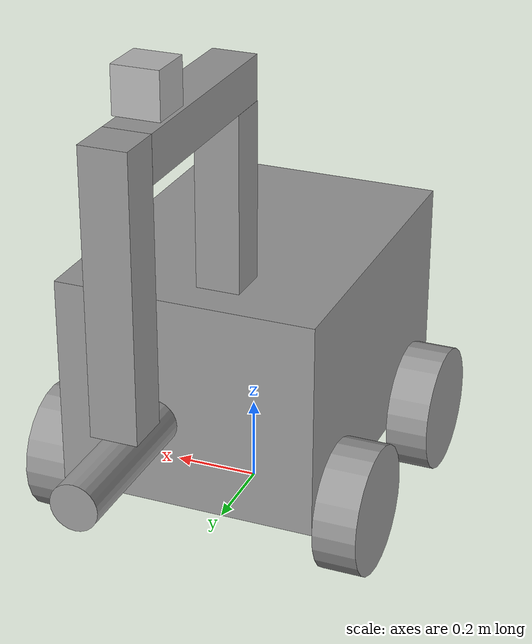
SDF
<?xml version='1.0'?>
<sdf version='1.7'>
  <model name='diff_drive_robot_complete'>
    <link name='link_0'>
      <inertial>
        <mass>2</mass>
        <inertia>
          <ixx>0.148333</ixx>
          <ixy>0</ixy>
          <ixz>0</ixz>
          <iyy>0.101667</iyy>
          <iyz>0</iyz>
          <izz>0.166667</izz>
        </inertia>
        <pose>0 0 0 0 -0 0</pose>
      </inertial>
      <pose>0 0 0.39 0 -0 0</pose>
      <gravity>1</gravity>
      <self_collide>0</self_collide>
      <kinematic>0</kinematic>
      <enable_wind>0</enable_wind>
      <visual name='visual'>
        <pose>0 0 0 0 -0 0</pose>
        <geometry>
          <box>
            <size>0.6 0.8 0.5</size>
          </box>
        </geometry>
        <material>
          <lighting>1</lighting>
          <script>
            <uri>file://media/materials/scripts/gazebo.material</uri>
            <name>Gazebo/Grey</name>
          </script>
          <shader type='pixel'>
            <normal_map>__default__</normal_map>
          </shader>
          <ambient>0.3 0.3 0.3 1</ambient>
          <diffuse>0.7 0.7 0.7 1</diffuse>
          <specular>0.01 0.01 0.01 1</specular>
          <emissive>0 0 0 1</emissive>
        </material>
        <transparency>0</transparency>
        <cast_shadows>1</cast_shadows>
      </visual>
      <collision name='collision'>
        <laser_retro>0</laser_retro>
        <max_contacts>10</max_contacts>
        <pose>0 0 0 0 -0 0</pose>
        <geometry>
          <box>
            <size>0.6 0.8 0.5</size>
          </box>
        </geometry>
        <surface>
          <friction>
            <ode>
              <mu>1</mu>
              <mu2>1</mu2>
              <fdir1>0 0 0</fdir1>
              <slip1>0</slip1>
              <slip2>0</slip2>
            </ode>
            <torsional>
              <coefficient>1</coefficient>
              <patch_radius>0</patch_radius>
              <surface_radius>0</surface_radius>
              <use_patch_radius>1</use_patch_radius>
              <ode>
                <slip>0</slip>
              </ode>
            </torsional>
          </friction>
          <bounce>
            <restitution_coefficient>0</restitution_coefficient>
            <threshold>1e+06</threshold>
          </bounce>
          <contact>
            <collide_without_contact>0</collide_without_contact>
            <collide_without_contact_bitmask>1</collide_without_contact_bitmask>
            <collide_bitmask>1</collide_bitmask>
            <ode>
              <soft_cfm>0</soft_cfm>
              <soft_erp>0.2</soft_erp>
              <kp>1e+13</kp>
              <kd>1</kd>
              <max_vel>0.01</max_vel>
              <min_depth>0</min_depth>
            </ode>
            <bullet>
              <split_impulse>1</split_impulse>
              <split_impulse_penetration_threshold>-0.01</split_impulse_penetration_threshold>
              <soft_cfm>0</soft_cfm>
              <soft_erp>0.2</soft_erp>
              <kp>1e+13</kp>
              <kd>1</kd>
            </bullet>
          </contact>
        </surface>
      </collision>
    </link>
    <link name='link_0_0'>
      <inertial>
        <mass>1</mass>
        <inertia>
          <ixx>0.166667</ixx>
          <ixy>0</ixy>
          <ixz>0</ixz>
          <iyy>0.166667</iyy>
          <iyz>0</iyz>
          <izz>0.166667</izz>
        </inertia>
        <pose>0 0 0 0 -0 0</pose>
      </inertial>
      <pose>-0.044754 0.260325 0.84 0 0 -0.000943</pose>
      <gravity>1</gravity>
      <self_collide>0</self_collide>
      <kinematic>0</kinematic>
      <enable_wind>0</enable_wind>
      <visual name='visual'>
        <pose>0 0 0 0 -0 0</pose>
        <geometry>
          <box>
            <size>0.1 0.1 0.4</size>
          </box>
        </geometry>
        <material>
          <lighting>1</lighting>
          <script>
            <uri>file://media/materials/scripts/gazebo.material</uri>
            <name>Gazebo/Grey</name>
          </script>
          <shader type='pixel'>
            <normal_map>__default__</normal_map>
          </shader>
          <ambient>0.3 0.3 0.3 1</ambient>
          <diffuse>0.7 0.7 0.7 1</diffuse>
          <specular>0.01 0.01 0.01 1</specular>
          <emissive>0 0 0 1</emissive>
        </material>
        <transparency>0</transparency>
        <cast_shadows>1</cast_shadows>
      </visual>
      <collision name='collision'>
        <laser_retro>0</laser_retro>
        <max_contacts>10</max_contacts>
        <pose>0 0 0 0 -0 0</pose>
        <geometry>
          <box>
            <size>0.1 0.1 0.4</size>
          </box>
        </geometry>
        <surface>
          <friction>
            <ode>
              <mu>1</mu>
              <mu2>1</mu2>
              <fdir1>0 0 0</fdir1>
              <slip1>0</slip1>
              <slip2>0</slip2>
            </ode>
            <torsional>
              <coefficient>1</coefficient>
              <patch_radius>0</patch_radius>
              <surface_radius>0</surface_radius>
              <use_patch_radius>1</use_patch_radius>
              <ode>
                <slip>0</slip>
              </ode>
            </torsional>
          </friction>
          <bounce>
            <restitution_coefficient>0</restitution_coefficient>
            <threshold>1e+06</threshold>
          </bounce>
          <contact>
            <collide_without_contact>0</collide_without_contact>
            <collide_without_contact_bitmask>1</collide_without_contact_bitmask>
            <collide_bitmask>1</collide_bitmask>
            <ode>
              <soft_cfm>0</soft_cfm>
              <soft_erp>0.2</soft_erp>
              <kp>1e+13</kp>
              <kd>1</kd>
              <max_vel>0.01</max_vel>
              <min_depth>0</min_depth>
            </ode>
            <bullet>
              <split_impulse>1</split_impulse>
              <split_impulse_penetration_threshold>-0.01</split_impulse_penetration_threshold>
              <soft_cfm>0</soft_cfm>
              <soft_erp>0.2</soft_erp>
              <kp>1e+13</kp>
              <kd>1</kd>
            </bullet>
          </contact>
        </surface>
      </collision>
    </link>
    <link name='link_0_0_clone'>
      <inertial>
        <mass>1</mass>
        <inertia>
          <ixx>0.166667</ixx>
          <ixy>0</ixy>
          <ixz>0</ixz>
          <iyy>0.166667</iyy>
          <iyz>0</iyz>
          <izz>0.166667</izz>
        </inertia>
        <pose>0 0 0 0 -0 0</pose>
      </inertial>
      <pose>-0.04433 0.460377 1.09002 1.5707 -0 0</pose>
      <gravity>1</gravity>
      <self_collide>0</self_collide>
      <kinematic>0</kinematic>
      <enable_wind>0</enable_wind>
      <visual name='visual_0'>
        <pose>0 0 0 0 -0 0</pose>
        <geometry>
          <box>
            <size>0.1 0.1 0.5</size>
          </box>
        </geometry>
        <material>
          <lighting>1</lighting>
          <script>
            <uri>file://media/materials/scripts/gazebo.material</uri>
            <name>Gazebo/Grey</name>
          </script>
          <shader type='pixel'>
            <normal_map>__default__</normal_map>
          </shader>
          <ambient>0.3 0.3 0.3 1</ambient>
          <diffuse>0.7 0.7 0.7 1</diffuse>
          <specular>0.01 0.01 0.01 1</specular>
          <emissive>0 0 0 1</emissive>
        </material>
        <transparency>0</transparency>
        <cast_shadows>1</cast_shadows>
      </visual>
      <collision name='collision'>
        <laser_retro>0</laser_retro>
        <max_contacts>10</max_contacts>
        <pose>0 0 0 0 -0 0</pose>
        <geometry>
          <box>
            <size>0.1 0.1 0.5</size>
          </box>
        </geometry>
        <surface>
          <friction>
            <ode>
              <mu>1</mu>
              <mu2>1</mu2>
              <fdir1>0 0 0</fdir1>
              <slip1>0</slip1>
              <slip2>0</slip2>
            </ode>
            <torsional>
              <coefficient>1</coefficient>
              <patch_radius>0</patch_radius>
              <surface_radius>0</surface_radius>
              <use_patch_radius>1</use_patch_radius>
              <ode>
                <slip>0</slip>
              </ode>
            </torsional>
          </friction>
          <bounce>
            <restitution_coefficient>0</restitution_coefficient>
            <threshold>1e+06</threshold>
          </bounce>
          <contact>
            <collide_without_contact>0</collide_without_contact>
            <collide_without_contact_bitmask>1</collide_without_contact_bitmask>
            <collide_bitmask>1</collide_bitmask>
            <ode>
              <soft_cfm>0</soft_cfm>
              <soft_erp>0.2</soft_erp>
              <kp>1e+13</kp>
              <kd>1</kd>
              <max_vel>0.01</max_vel>
              <min_depth>0</min_depth>
            </ode>
            <bullet>
              <split_impulse>1</split_impulse>
              <split_impulse_penetration_threshold>-0.01</split_impulse_penetration_threshold>
              <soft_cfm>0</soft_cfm>
              <soft_erp>0.2</soft_erp>
              <kp>1e+13</kp>
              <kd>1</kd>
            </bullet>
          </contact>
        </surface>
      </collision>
    </link>
    <link name='link_1'>
      <inertial>
        <mass>1</mass>
        <inertia>
          <ixx>0.166667</ixx>
          <ixy>0</ixy>
          <ixz>0</ixz>
          <iyy>0.166667</iyy>
          <iyz>0</iyz>
          <izz>0.166667</izz>
        </inertia>
        <pose>0 0 0 0 -0 0</pose>
      </inertial>
      <pose>-0.044283 0.760429 0.840048 0 0 -0.000943</pose>
      <gravity>1</gravity>
      <self_collide>0</self_collide>
      <kinematic>0</kinematic>
      <enable_wind>0</enable_wind>
      <visual name='visual'>
        <pose>0 0 0 0 -0 0</pose>
        <geometry>
          <box>
            <size>0.1 0.1 0.6</size>
          </box>
        </geometry>
        <material>
          <lighting>1</lighting>
          <script>
            <uri>file://media/materials/scripts/gazebo.material</uri>
            <name>Gazebo/Grey</name>
          </script>
          <shader type='pixel'>
            <normal_map>__default__</normal_map>
          </shader>
          <ambient>0.3 0.3 0.3 1</ambient>
          <diffuse>0.7 0.7 0.7 1</diffuse>
          <specular>0.01 0.01 0.01 1</specular>
          <emissive>0 0 0 1</emissive>
        </material>
        <transparency>0</transparency>
        <cast_shadows>1</cast_shadows>
      </visual>
      <collision name='collision'>
        <laser_retro>0</laser_retro>
        <max_contacts>10</max_contacts>
        <pose>0 0 0 0 -0 0</pose>
        <geometry>
          <box>
            <size>0.1 0.1 0.6</size>
          </box>
        </geometry>
        <surface>
          <friction>
            <ode>
              <mu>1</mu>
              <mu2>1</mu2>
              <fdir1>0 0 0</fdir1>
              <slip1>0</slip1>
              <slip2>0</slip2>
            </ode>
            <torsional>
              <coefficient>1</coefficient>
              <patch_radius>0</patch_radius>
              <surface_radius>0</surface_radius>
              <use_patch_radius>1</use_patch_radius>
              <ode>
                <slip>0</slip>
              </ode>
            </torsional>
          </friction>
          <bounce>
            <restitution_coefficient>0</restitution_coefficient>
            <threshold>1e+06</threshold>
          </bounce>
          <contact>
            <collide_without_contact>0</collide_without_contact>
            <collide_without_contact_bitmask>1</collide_without_contact_bitmask>
            <collide_bitmask>1</collide_bitmask>
            <ode>
              <soft_cfm>0</soft_cfm>
              <soft_erp>0.2</soft_erp>
              <kp>1e+13</kp>
              <kd>1</kd>
              <max_vel>0.01</max_vel>
              <min_depth>0</min_depth>
            </ode>
            <bullet>
              <split_impulse>1</split_impulse>
              <split_impulse_penetration_threshold>-0.01</split_impulse_penetration_threshold>
              <soft_cfm>0</soft_cfm>
              <soft_erp>0.2</soft_erp>
              <kp>1e+13</kp>
              <kd>1</kd>
            </bullet>
          </contact>
        </surface>
      </collision>
    </link>
    <link name='link_1_clone'>
      <inertial>
        <mass>1</mass>
        <inertia>
          <ixx>0.145833</ixx>
          <ixy>0</ixy>
          <ixz>0</ixz>
          <iyy>0.145833</iyy>
          <iyz>0</iyz>
          <izz>0.125</izz>
        </inertia>
        <pose>0 0 0 0 -0 0</pose>
      </inertial>
      <pose>0.350029 -0.249995 0.14 1.5707 0 1.5707</pose>
      <gravity>1</gravity>
      <self_collide>0</self_collide>
      <kinematic>0</kinematic>
      <enable_wind>0</enable_wind>
      <visual name='visual'>
        <pose>0 0 0 0 -0 0</pose>
        <geometry>
          <cylinder>
            <radius>0.15</radius>
            <length>0.1</length>
          </cylinder>
        </geometry>
        <material>
          <lighting>1</lighting>
          <script>
            <uri>file://media/materials/scripts/gazebo.material</uri>
            <name>Gazebo/Grey</name>
          </script>
          <shader type='pixel'>
            <normal_map>__default__</normal_map>
          </shader>
          <ambient>0.3 0.3 0.3 1</ambient>
          <diffuse>0.7 0.7 0.7 1</diffuse>
          <specular>0.01 0.01 0.01 1</specular>
          <emissive>0 0 0 1</emissive>
        </material>
        <transparency>0</transparency>
        <cast_shadows>1</cast_shadows>
      </visual>
      <collision name='collision'>
        <laser_retro>0</laser_retro>
        <max_contacts>10</max_contacts>
        <pose>0 0 0 0 -0 0</pose>
        <geometry>
          <cylinder>
            <radius>0.15</radius>
            <length>0.1</length>
          </cylinder>
        </geometry>
        <surface>
          <friction>
            <ode>
              <mu>1</mu>
              <mu2>1</mu2>
              <fdir1>0 0 0</fdir1>
              <slip1>0</slip1>
              <slip2>0</slip2>
            </ode>
            <torsional>
              <coefficient>1</coefficient>
              <patch_radius>0</patch_radius>
              <surface_radius>0</surface_radius>
              <use_patch_radius>1</use_patch_radius>
              <ode>
                <slip>0</slip>
              </ode>
            </torsional>
          </friction>
          <bounce>
            <restitution_coefficient>0</restitution_coefficient>
            <threshold>1e+06</threshold>
          </bounce>
          <contact>
            <collide_without_contact>0</collide_without_contact>
            <collide_without_contact_bitmask>1</collide_without_contact_bitmask>
            <collide_bitmask>1</collide_bitmask>
            <ode>
              <soft_cfm>0</soft_cfm>
              <soft_erp>0.2</soft_erp>
              <kp>1e+13</kp>
              <kd>1</kd>
              <max_vel>0.01</max_vel>
              <min_depth>0</min_depth>
            </ode>
            <bullet>
              <split_impulse>1</split_impulse>
              <split_impulse_penetration_threshold>-0.01</split_impulse_penetration_threshold>
              <soft_cfm>0</soft_cfm>
              <soft_erp>0.2</soft_erp>
              <kp>1e+13</kp>
              <kd>1</kd>
            </bullet>
          </contact>
        </surface>
      </collision>
    </link>
    <link name='link_1_clone_clone'>
      <inertial>
        <mass>1</mass>
        <inertia>
          <ixx>0.145833</ixx>
          <ixy>0</ixy>
          <ixz>0</ixz>
          <iyy>0.145833</iyy>
          <iyz>0</iyz>
          <izz>0.125</izz>
        </inertia>
        <pose>0 0 0 0 -0 0</pose>
      </inertial>
      <pose>0.350029 0.249995 0.14 1.5707 0 1.5707</pose>
      <gravity>1</gravity>
      <self_collide>0</self_collide>
      <kinematic>0</kinematic>
      <enable_wind>0</enable_wind>
      <visual name='visual'>
        <pose>0 0 0 0 -0 0</pose>
        <geometry>
          <cylinder>
            <radius>0.15</radius>
            <length>0.1</length>
          </cylinder>
        </geometry>
        <material>
          <lighting>1</lighting>
          <script>
            <uri>file://media/materials/scripts/gazebo.material</uri>
            <name>Gazebo/Grey</name>
          </script>
          <shader type='pixel'>
            <normal_map>__default__</normal_map>
          </shader>
          <ambient>0.3 0.3 0.3 1</ambient>
          <diffuse>0.7 0.7 0.7 1</diffuse>
          <specular>0.01 0.01 0.01 1</specular>
          <emissive>0 0 0 1</emissive>
        </material>
        <transparency>0</transparency>
        <cast_shadows>1</cast_shadows>
      </visual>
      <collision name='collision'>
        <laser_retro>0</laser_retro>
        <max_contacts>10</max_contacts>
        <pose>0 0 0 0 -0 0</pose>
        <geometry>
          <cylinder>
            <radius>0.15</radius>
            <length>0.1</length>
          </cylinder>
        </geometry>
        <surface>
          <friction>
            <ode>
              <mu>1</mu>
              <mu2>1</mu2>
              <fdir1>0 0 0</fdir1>
              <slip1>0</slip1>
              <slip2>0</slip2>
            </ode>
            <torsional>
              <coefficient>1</coefficient>
              <patch_radius>0</patch_radius>
              <surface_radius>0</surface_radius>
              <use_patch_radius>1</use_patch_radius>
              <ode>
                <slip>0</slip>
              </ode>
            </torsional>
          </friction>
          <bounce>
            <restitution_coefficient>0</restitution_coefficient>
            <threshold>1e+06</threshold>
          </bounce>
          <contact>
            <collide_without_contact>0</collide_without_contact>
            <collide_without_contact_bitmask>1</collide_without_contact_bitmask>
            <collide_bitmask>1</collide_bitmask>
            <ode>
              <soft_cfm>0</soft_cfm>
              <soft_erp>0.2</soft_erp>
              <kp>1e+13</kp>
              <kd>1</kd>
              <max_vel>0.01</max_vel>
              <min_depth>0</min_depth>
            </ode>
            <bullet>
              <split_impulse>1</split_impulse>
              <split_impulse_penetration_threshold>-0.01</split_impulse_penetration_threshold>
              <soft_cfm>0</soft_cfm>
              <soft_erp>0.2</soft_erp>
              <kp>1e+13</kp>
              <kd>1</kd>
            </bullet>
          </contact>
        </surface>
      </collision>
    </link>
    <link name='link_1_clone_clone_0'>
      <inertial>
        <mass>1</mass>
        <inertia>
          <ixx>0.145833</ixx>
          <ixy>0</ixy>
          <ixz>0</ixz>
          <iyy>0.145833</iyy>
          <iyz>0</iyz>
          <izz>0.125</izz>
        </inertia>
        <pose>0 0 0 0 -0 0</pose>
      </inertial>
      <pose>-0.350029 0.249995 0.14 1.5707 0 1.5707</pose>
      <gravity>1</gravity>
      <self_collide>0</self_collide>
      <kinematic>0</kinematic>
      <enable_wind>0</enable_wind>
      <visual name='visual'>
        <pose>0 0 0 0 -0 0</pose>
        <geometry>
          <cylinder>
            <radius>0.15</radius>
            <length>0.1</length>
          </cylinder>
        </geometry>
        <material>
          <lighting>1</lighting>
          <script>
            <uri>file://media/materials/scripts/gazebo.material</uri>
            <name>Gazebo/Grey</name>
          </script>
          <shader type='pixel'>
            <normal_map>__default__</normal_map>
          </shader>
          <ambient>0.3 0.3 0.3 1</ambient>
          <diffuse>0.7 0.7 0.7 1</diffuse>
          <specular>0.01 0.01 0.01 1</specular>
          <emissive>0 0 0 1</emissive>
        </material>
        <transparency>0</transparency>
        <cast_shadows>1</cast_shadows>
      </visual>
      <collision name='collision'>
        <laser_retro>0</laser_retro>
        <max_contacts>10</max_contacts>
        <pose>0 0 0 0 -0 0</pose>
        <geometry>
          <cylinder>
            <radius>0.15</radius>
            <length>0.1</length>
          </cylinder>
        </geometry>
        <surface>
          <friction>
            <ode>
              <mu>1</mu>
              <mu2>1</mu2>
              <fdir1>0 0 0</fdir1>
              <slip1>0</slip1>
              <slip2>0</slip2>
            </ode>
            <torsional>
              <coefficient>1</coefficient>
              <patch_radius>0</patch_radius>
              <surface_radius>0</surface_radius>
              <use_patch_radius>1</use_patch_radius>
              <ode>
                <slip>0</slip>
              </ode>
            </torsional>
          </friction>
          <bounce>
            <restitution_coefficient>0</restitution_coefficient>
            <threshold>1e+06</threshold>
          </bounce>
          <contact>
            <collide_without_contact>0</collide_without_contact>
            <collide_without_contact_bitmask>1</collide_without_contact_bitmask>
            <collide_bitmask>1</collide_bitmask>
            <ode>
              <soft_cfm>0</soft_cfm>
              <soft_erp>0.2</soft_erp>
              <kp>1e+13</kp>
              <kd>1</kd>
              <max_vel>0.01</max_vel>
              <min_depth>0</min_depth>
            </ode>
            <bullet>
              <split_impulse>1</split_impulse>
              <split_impulse_penetration_threshold>-0.01</split_impulse_penetration_threshold>
              <soft_cfm>0</soft_cfm>
              <soft_erp>0.2</soft_erp>
              <kp>1e+13</kp>
              <kd>1</kd>
            </bullet>
          </contact>
        </surface>
      </collision>
    </link>
    <link name='link_1_clone_clone_1'>
      <inertial>
        <mass>1</mass>
        <inertia>
          <ixx>0.145833</ixx>
          <ixy>0</ixy>
          <ixz>0</ixz>
          <iyy>0.145833</iyy>
          <iyz>0</iyz>
          <izz>0.125</izz>
        </inertia>
        <pose>0 0 0 0 -0 0</pose>
      </inertial>
      <pose>-0.350029 -0.249995 0.14 1.5707 0 1.5707</pose>
      <gravity>1</gravity>
      <self_collide>0</self_collide>
      <kinematic>0</kinematic>
      <enable_wind>0</enable_wind>
      <visual name='visual'>
        <pose>0 0 0 0 -0 0</pose>
        <geometry>
          <cylinder>
            <radius>0.15</radius>
            <length>0.1</length>
          </cylinder>
        </geometry>
        <material>
          <lighting>1</lighting>
          <script>
            <uri>file://media/materials/scripts/gazebo.material</uri>
            <name>Gazebo/Grey</name>
          </script>
          <shader type='pixel'>
            <normal_map>__default__</normal_map>
          </shader>
          <ambient>0.3 0.3 0.3 1</ambient>
          <diffuse>0.7 0.7 0.7 1</diffuse>
          <specular>0.01 0.01 0.01 1</specular>
          <emissive>0 0 0 1</emissive>
        </material>
        <transparency>0</transparency>
        <cast_shadows>1</cast_shadows>
      </visual>
      <collision name='collision'>
        <laser_retro>0</laser_retro>
        <max_contacts>10</max_contacts>
        <pose>0 0 0 0 -0 0</pose>
        <geometry>
          <cylinder>
            <radius>0.15</radius>
            <length>0.1</length>
          </cylinder>
        </geometry>
        <surface>
          <friction>
            <ode>
              <mu>1</mu>
              <mu2>1</mu2>
              <fdir1>0 0 0</fdir1>
              <slip1>0</slip1>
              <slip2>0</slip2>
            </ode>
            <torsional>
              <coefficient>1</coefficient>
              <patch_radius>0</patch_radius>
              <surface_radius>0</surface_radius>
              <use_patch_radius>1</use_patch_radius>
              <ode>
                <slip>0</slip>
              </ode>
            </torsional>
          </friction>
          <bounce>
            <restitution_coefficient>0</restitution_coefficient>
            <threshold>1e+06</threshold>
          </bounce>
          <contact>
            <collide_without_contact>0</collide_without_contact>
            <collide_without_contact_bitmask>1</collide_without_contact_bitmask>
            <collide_bitmask>1</collide_bitmask>
            <ode>
              <soft_cfm>0</soft_cfm>
              <soft_erp>0.2</soft_erp>
              <kp>1e+13</kp>
              <kd>1</kd>
              <max_vel>0.01</max_vel>
              <min_depth>0</min_depth>
            </ode>
            <bullet>
              <split_impulse>1</split_impulse>
              <split_impulse_penetration_threshold>-0.01</split_impulse_penetration_threshold>
              <soft_cfm>0</soft_cfm>
              <soft_erp>0.2</soft_erp>
              <kp>1e+13</kp>
              <kd>1</kd>
            </bullet>
          </contact>
        </surface>
      </collision>
    </link>
    <link name='link_2'>
      <inertial>
        <mass>1</mass>
        <inertia>
          <ixx>0.145833</ixx>
          <ixy>0</ixy>
          <ixz>0</ixz>
          <iyy>0.145833</iyy>
          <iyz>0</iyz>
          <izz>0.125</izz>
        </inertia>
        <pose>0 0 0 0 -0 0</pose>
      </inertial>
      <pose>-0.044075 0.805382 0.489994 1.5707 -0 0</pose>
      <gravity>1</gravity>
      <self_collide>0</self_collide>
      <kinematic>0</kinematic>
      <enable_wind>0</enable_wind>
      <visual name='visual'>
        <pose>0 0 0 0 -0 0</pose>
        <geometry>
          <cylinder>
            <radius>0.05</radius>
            <length>0.35</length>
          </cylinder>
        </geometry>
        <material>
          <lighting>1</lighting>
          <script>
            <uri>file://media/materials/scripts/gazebo.material</uri>
            <name>Gazebo/Grey</name>
          </script>
          <shader type='pixel'>
            <normal_map>__default__</normal_map>
          </shader>
          <ambient>0.3 0.3 0.3 1</ambient>
          <diffuse>0.7 0.7 0.7 1</diffuse>
          <specular>0.01 0.01 0.01 1</specular>
          <emissive>0 0 0 1</emissive>
        </material>
        <transparency>0</transparency>
        <cast_shadows>1</cast_shadows>
      </visual>
      <collision name='collision'>
        <laser_retro>0</laser_retro>
        <max_contacts>10</max_contacts>
        <pose>0 0 0 0 -0 0</pose>
        <geometry>
          <cylinder>
            <radius>0.05</radius>
            <length>0.35</length>
          </cylinder>
        </geometry>
        <surface>
          <friction>
            <ode>
              <mu>1</mu>
              <mu2>1</mu2>
              <fdir1>0 0 0</fdir1>
              <slip1>0</slip1>
              <slip2>0</slip2>
            </ode>
            <torsional>
              <coefficient>1</coefficient>
              <patch_radius>0</patch_radius>
              <surface_radius>0</surface_radius>
              <use_patch_radius>1</use_patch_radius>
              <ode>
                <slip>0</slip>
              </ode>
            </torsional>
          </friction>
          <bounce>
            <restitution_coefficient>0</restitution_coefficient>
            <threshold>1e+06</threshold>
          </bounce>
          <contact>
            <collide_without_contact>0</collide_without_contact>
            <collide_without_contact_bitmask>1</collide_without_contact_bitmask>
            <collide_bitmask>1</collide_bitmask>
            <ode>
              <soft_cfm>0</soft_cfm>
              <soft_erp>0.2</soft_erp>
              <kp>1e+13</kp>
              <kd>1</kd>
              <max_vel>0.01</max_vel>
              <min_depth>0</min_depth>
            </ode>
            <bullet>
              <split_impulse>1</split_impulse>
              <split_impulse_penetration_threshold>-0.01</split_impulse_penetration_threshold>
              <soft_cfm>0</soft_cfm>
              <soft_erp>0.2</soft_erp>
              <kp>1e+13</kp>
              <kd>1</kd>
            </bullet>
          </contact>
        </surface>
      </collision>
    </link>
    <model name='depth_camera'>
      <link name='link'>
        <pose>0 0 0.05 0 -0 0</pose>
        <inertial>
          <mass>0.1</mass>
          <inertia>
            <ixx>0.000166667</ixx>
            <iyy>0.000166667</iyy>
            <izz>0.000166667</izz>
            <ixy>0</ixy>
            <ixz>0</ixz>
            <iyz>0</iyz>
          </inertia>
          <pose>0 0 0 0 -0 0</pose>
        </inertial>
        <collision name='collision'>
          <geometry>
            <box>
              <size>0.1 0.1 0.1</size>
            </box>
          </geometry>
          <max_contacts>10</max_contacts>
          <surface>
            <contact>
              <ode/>
            </contact>
            <bounce/>
            <friction>
              <torsional>
                <ode/>
              </torsional>
              <ode/>
            </friction>
          </surface>
        </collision>
        <visual name='visual'>
          <geometry>
            <box>
              <size>0.1 0.1 0.1</size>
            </box>
          </geometry>
        </visual>
        <sensor name='camera' type='depth'>
          <camera>
            <horizontal_fov>1.047</horizontal_fov>
            <image>
              <width>320</width>
              <height>240</height>
            </image>
            <clip>
              <near>0.1</near>
              <far>100</far>
            </clip>
          </camera>
          <always_on>1</always_on>
          <update_rate>30</update_rate>
          <visualize>1</visualize>
        </sensor>
        <self_collide>0</self_collide>
        <enable_wind>0</enable_wind>
        <kinematic>0</kinematic>
      </link>
      <pose>-0.038894 0.610703 1.14346 0 -0 0</pose>
    </model>
    <joint name='link_0_0_JOINT_2' type='fixed'>
      <parent>link_0_0</parent>
      <child>link_0_0_clone</child>
      <pose>0 0 0 0 -0 0</pose>
      <physics>
        <ode>
          <limit>
            <cfm>0</cfm>
            <erp>0.2</erp>
          </limit>
          <suspension>
            <cfm>0</cfm>
            <erp>0.2</erp>
          </suspension>
        </ode>
      </physics>
    </joint>
    <joint name='link_0_0_clone_JOINT_1' type='fixed'>
      <parent>link_0_0_clone</parent>
      <child>depth_camera::link</child>
      <pose>0 0 0 0 -0 0</pose>
      <physics>
        <ode>
          <limit>
            <cfm>0</cfm>
            <erp>0.2</erp>
          </limit>
          <suspension>
            <cfm>0</cfm>
            <erp>0.2</erp>
          </suspension>
        </ode>
      </physics>
    </joint>
    <joint name='link_0_0_clone_JOINT_4' type='revolute'>
      <parent>link_0_0_clone</parent>
      <child>link_1</child>
      <pose>0 0 0 0 -0 0</pose>
      <axis>
        <xyz>0 0 1</xyz>
        <limit>
          <lower>-1.79769e+308</lower>
          <upper>1.79769e+308</upper>
          <effort>-1</effort>
          <velocity>-1</velocity>
        </limit>
        <dynamics>
          <spring_reference>0</spring_reference>
          <spring_stiffness>0</spring_stiffness>
          <damping>0</damping>
          <friction>0</friction>
        </dynamics>
      </axis>
      <physics>
        <ode>
          <limit>
            <cfm>0</cfm>
            <erp>0.2</erp>
          </limit>
          <suspension>
            <cfm>0</cfm>
            <erp>0.2</erp>
          </suspension>
        </ode>
      </physics>
    </joint>
    <joint name='link_0_JOINT_0' type='revolute'>
      <parent>link_0</parent>
      <child>link_0_0</child>
      <pose>0 0 0 0 -0 0</pose>
      <axis>
        <xyz>0 0 1</xyz>
        <limit>
          <lower>-1.79769e+308</lower>
          <upper>1.79769e+308</upper>
          <effort>-1</effort>
          <velocity>-1</velocity>
        </limit>
        <dynamics>
          <spring_reference>0</spring_reference>
          <spring_stiffness>0</spring_stiffness>
          <damping>0</damping>
          <friction>0</friction>
        </dynamics>
      </axis>
      <physics>
        <ode>
          <limit>
            <cfm>0</cfm>
            <erp>0.2</erp>
          </limit>
          <suspension>
            <cfm>0</cfm>
            <erp>0.2</erp>
          </suspension>
        </ode>
      </physics>
    </joint>
    <joint name='link_0_JOINT_3' type='revolute'>
      <parent>link_0</parent>
      <child>link_1_clone</child>
      <pose>0 0 0 0 -0 0</pose>
      <axis>
        <xyz>0 0 1</xyz>
        <limit>
          <lower>-1.79769e+308</lower>
          <upper>1.79769e+308</upper>
          <effort>-1</effort>
          <velocity>-1</velocity>
        </limit>
        <dynamics>
          <spring_reference>0</spring_reference>
          <spring_stiffness>0</spring_stiffness>
          <damping>0</damping>
          <friction>0</friction>
        </dynamics>
      </axis>
      <physics>
        <ode>
          <limit>
            <cfm>0</cfm>
            <erp>0.2</erp>
          </limit>
          <suspension>
            <cfm>0</cfm>
            <erp>0.2</erp>
          </suspension>
        </ode>
      </physics>
    </joint>
    <joint name='link_0_JOINT_4' type='revolute'>
      <parent>link_0</parent>
      <child>link_1_clone_clone</child>
      <pose>0 0 0 0 -0 0</pose>
      <axis>
        <xyz>0 0 1</xyz>
        <limit>
          <lower>-1.79769e+308</lower>
          <upper>1.79769e+308</upper>
          <effort>-1</effort>
          <velocity>-1</velocity>
        </limit>
        <dynamics>
          <spring_reference>0</spring_reference>
          <spring_stiffness>0</spring_stiffness>
          <damping>0</damping>
          <friction>0</friction>
        </dynamics>
      </axis>
      <physics>
        <ode>
          <limit>
            <cfm>0</cfm>
            <erp>0.2</erp>
          </limit>
          <suspension>
            <cfm>0</cfm>
            <erp>0.2</erp>
          </suspension>
        </ode>
      </physics>
    </joint>
    <joint name='link_0_JOINT_5' type='revolute'>
      <parent>link_0</parent>
      <child>link_1_clone_clone_1</child>
      <pose>0 0 0 0 -0 0</pose>
      <axis>
        <xyz>0 0 1</xyz>
        <limit>
          <lower>-1.79769e+308</lower>
          <upper>1.79769e+308</upper>
          <effort>-1</effort>
          <velocity>-1</velocity>
        </limit>
        <dynamics>
          <spring_reference>0</spring_reference>
          <spring_stiffness>0</spring_stiffness>
          <damping>0</damping>
          <friction>0</friction>
        </dynamics>
      </axis>
      <physics>
        <ode>
          <limit>
            <cfm>0</cfm>
            <erp>0.2</erp>
          </limit>
          <suspension>
            <cfm>0</cfm>
            <erp>0.2</erp>
          </suspension>
        </ode>
      </physics>
    </joint>
    <joint name='link_0_JOINT_7' type='revolute'>
      <parent>link_0</parent>
      <child>link_1_clone_clone_0</child>
      <pose>0 0 0 0 -0 0</pose>
      <axis>
        <xyz>0 0 1</xyz>
        <limit>
          <lower>-1.79769e+308</lower>
          <upper>1.79769e+308</upper>
          <effort>-1</effort>
          <velocity>-1</velocity>
        </limit>
        <dynamics>
          <spring_reference>0</spring_reference>
          <spring_stiffness>0</spring_stiffness>
          <damping>0</damping>
          <friction>0</friction>
        </dynamics>
      </axis>
      <physics>
        <ode>
          <limit>
            <cfm>0</cfm>
            <erp>0.2</erp>
          </limit>
          <suspension>
            <cfm>0</cfm>
            <erp>0.2</erp>
          </suspension>
        </ode>
      </physics>
    </joint>
    <joint name='link_1_JOINT_5' type='revolute'>
      <parent>link_1</parent>
      <child>link_2</child>
      <pose>0 0 0 0 -0 0</pose>
      <axis>
        <xyz>0 1 0</xyz>
        <limit>
          <lower>-1.79769e+308</lower>
          <upper>1.79769e+308</upper>
          <effort>-1</effort>
          <velocity>-1</velocity>
        </limit>
        <dynamics>
          <spring_reference>0</spring_reference>
          <spring_stiffness>0</spring_stiffness>
          <damping>0</damping>
          <friction>0</friction>
        </dynamics>
      </axis>
      <physics>
        <ode>
          <limit>
            <cfm>0</cfm>
            <erp>0.2</erp>
          </limit>
          <suspension>
            <cfm>0</cfm>
            <erp>0.2</erp>
          </suspension>
        </ode>
      </physics>
    </joint>
    <static>0</static>
    <allow_auto_disable>1</allow_auto_disable>
  </model>
</sdf>
